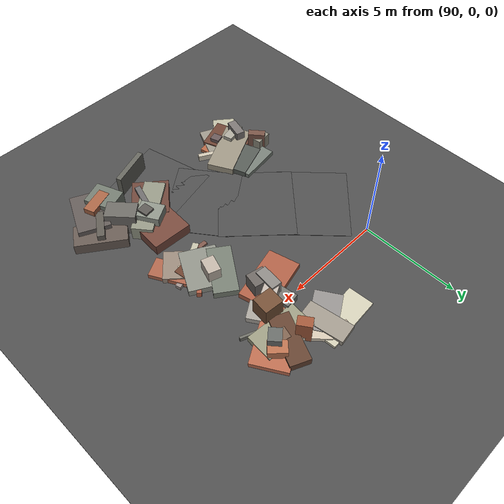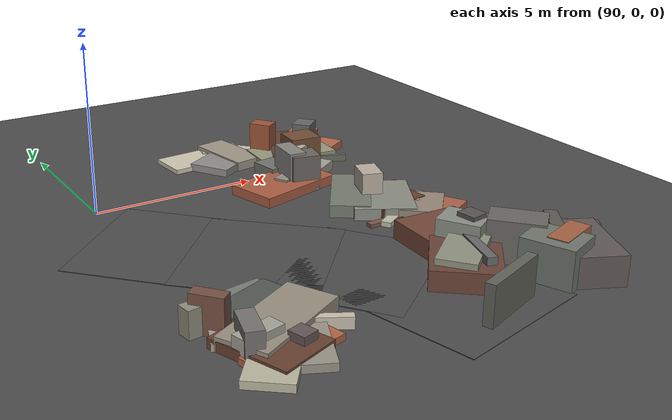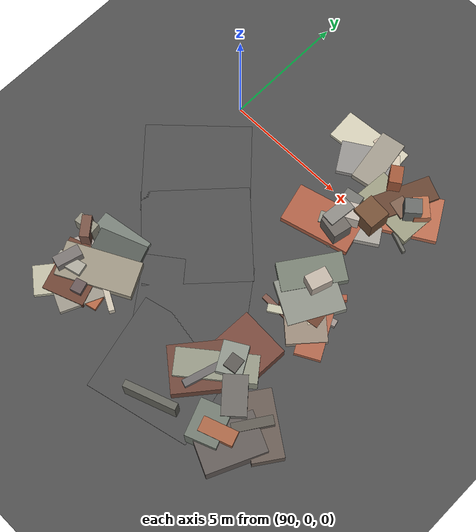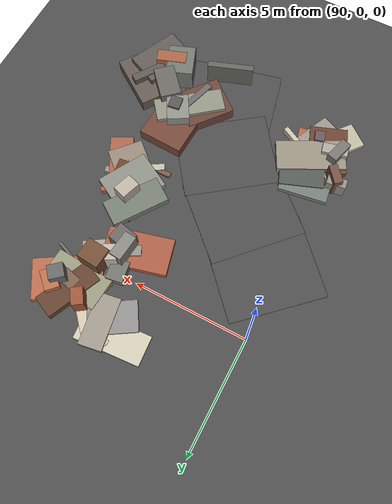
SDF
<sdf version="1.6">
 <world name="navitas_arena">
  <model name="ground_plane">
   <static>true</static>
   <link name="link">
    <collision name="collision">
     <geometry><plane><normal>0 0 1</normal><size>400 400</size></plane></geometry>
     <surface><friction><ode><mu>0.800</mu><mu2>0.800</mu2></ode></friction></surface>
    </collision>
    <visual name="visual">
     <cast_shadows>false</cast_shadows>
     <geometry><plane><normal>0 0 1</normal><size>400 400</size></plane></geometry>
     <material>
      <specular>0.04 0.04 0.04 1</specular>
      <script>
       <uri>file://media/materials/scripts/navitas_asphalt.material</uri>
       <name>Navitas/RealArenaAsphalt</name>
      </script>
     </material>
    </visual>
   </link>
  </model>
  <model name="gd_zor">
   <static>true</static>
   <pose>90.000 0.000 0.010 0 0 0.000</pose>
   <link name="link">
    <collision name="col"><geometry><box><size>50.000 50.000 0.020</size></box></geometry></collision>
    <visual name="vis">
     <geometry><box><size>50.000 50.000 0.020</size></box></geometry>
     <material>
      <specular>0.04 0.04 0.04 1</specular>
      <script>
       <uri>file://media/materials/scripts/navitas_asphalt.material</uri>
       <name>Navitas/RealArenaAsphalt</name>
      </script>
     </material>
    </visual>
   </link>
  </model>
  <model name="road_zor_2_5">
   <static>true</static>
   <pose>95.504 -9.460 0.040 0 0 1.804</pose>
   <link name="link">
    <collision name="col"><geometry><box><size>3.901 4.200 0.020</size></box></geometry></collision>
    <visual name="vis">
     <geometry><box><size>3.901 4.200 0.020</size></box></geometry>
     <material>
      <specular>0.04 0.04 0.04 1</specular>
      <script>
       <uri>file://media/materials/scripts/navitas_asphalt.material</uri>
       <name>Navitas/RealArenaAsphalt</name>
      </script>
     </material>
    </visual>
   </link>
  </model>
  <model name="road_zor_2_6">
   <static>true</static>
   <pose>94.415 -7.000 0.040 0 0 2.210</pose>
   <link name="link">
    <collision name="col"><geometry><box><size>3.391 4.200 0.020</size></box></geometry></collision>
    <visual name="vis">
     <geometry><box><size>3.391 4.200 0.020</size></box></geometry>
     <material>
      <specular>0.04 0.04 0.04 1</specular>
      <script>
       <uri>file://media/materials/scripts/navitas_asphalt.material</uri>
       <name>Navitas/RealArenaAsphalt</name>
      </script>
     </material>
    </visual>
   </link>
  </model>
  <model name="road_zor_2_7">
   <static>true</static>
   <pose>92.602 -5.000 0.040 0 0 2.390</pose>
   <link name="link">
    <collision name="col"><geometry><box><size>3.829 4.200 0.020</size></box></geometry></collision>
    <visual name="vis">
     <geometry><box><size>3.829 4.200 0.020</size></box></geometry>
     <material>
      <specular>0.04 0.04 0.04 1</specular>
      <script>
       <uri>file://media/materials/scripts/navitas_asphalt.material</uri>
       <name>Navitas/RealArenaAsphalt</name>
      </script>
     </material>
    </visual>
   </link>
  </model>
  <model name="road_zor_2_8">
   <static>true</static>
   <pose>90.593 -3.000 0.040 0 0 2.325</pose>
   <link name="link">
    <collision name="col"><geometry><box><size>3.644 4.200 0.020</size></box></geometry></collision>
    <visual name="vis">
     <geometry><box><size>3.644 4.200 0.020</size></box></geometry>
     <material>
      <specular>0.04 0.04 0.04 1</specular>
      <script>
       <uri>file://media/materials/scripts/navitas_asphalt.material</uri>
       <name>Navitas/RealArenaAsphalt</name>
      </script>
     </material>
    </visual>
   </link>
  </model>
  <model name="blk_zor_2_0_2">
   <static>true</static>
   <pose>97.161 -9.640 0.000 0 0 0</pose>
   <link name="link">
    <collision name="col_0">
     <pose>-0.304 1.284 0.414 0.000 0.000 1.272</pose>
     <geometry><box><size>2.331 0.281 0.828</size></box></geometry>
    </collision>
    <visual name="vis_0">
     <pose>-0.304 1.284 0.414 0.000 0.000 1.272</pose>
     <geometry><box><size>2.331 0.281 0.828</size></box></geometry>
     <material>
      <ambient>0.39 0.38 0.38 1</ambient>
      <diffuse>0.42 0.41 0.41 1</diffuse>
      <specular>0.05 0.05 0.045 1</specular>
     </material>
    </visual>
    <collision name="col_1">
     <pose>1.918 -0.392 0.306 0.000 0.000 0.699</pose>
     <geometry><box><size>0.371 0.389 0.612</size></box></geometry>
    </collision>
    <visual name="vis_1">
     <pose>1.918 -0.392 0.306 0.000 0.000 0.699</pose>
     <geometry><box><size>0.371 0.389 0.612</size></box></geometry>
     <material>
      <ambient>0.40 0.29 0.21 1</ambient>
      <diffuse>0.43 0.31 0.23 1</diffuse>
      <specular>0.05 0.05 0.045 1</specular>
     </material>
    </visual>
    <collision name="col_2">
     <pose>0.832 0.933 0.501 0.000 0.000 2.146</pose>
     <geometry><box><size>0.312 0.329 1.003</size></box></geometry>
    </collision>
    <visual name="vis_2">
     <pose>0.832 0.933 0.501 0.000 0.000 2.146</pose>
     <geometry><box><size>0.312 0.329 1.003</size></box></geometry>
     <material>
      <ambient>0.33 0.33 0.33 1</ambient>
      <diffuse>0.35 0.35 0.35 1</diffuse>
      <specular>0.05 0.05 0.045 1</specular>
     </material>
    </visual>
    <collision name="col_3">
     <pose>1.484 -0.208 0.587 0.000 0.000 3.481</pose>
     <geometry><box><size>1.334 0.571 1.174</size></box></geometry>
    </collision>
    <visual name="vis_3">
     <pose>1.484 -0.208 0.587 0.000 0.000 3.481</pose>
     <geometry><box><size>1.334 0.571 1.174</size></box></geometry>
     <material>
      <ambient>0.60 0.36 0.25 1</ambient>
      <diffuse>0.65 0.39 0.27 1</diffuse>
      <specular>0.05 0.05 0.045 1</specular>
     </material>
    </visual>
    <collision name="col_4">
     <pose>-1.120 -0.975 0.573 0.000 0.000 3.486</pose>
     <geometry><box><size>2.069 0.274 1.147</size></box></geometry>
    </collision>
    <visual name="vis_4">
     <pose>-1.120 -0.975 0.573 0.000 0.000 3.486</pose>
     <geometry><box><size>2.069 0.274 1.147</size></box></geometry>
     <material>
      <ambient>0.36 0.36 0.33 1</ambient>
      <diffuse>0.39 0.39 0.36 1</diffuse>
      <specular>0.05 0.05 0.045 1</specular>
     </material>
    </visual>
    <collision name="col_5">
     <pose>-0.771 0.992 0.305 0.000 0.000 0.884</pose>
     <geometry><box><size>2.109 1.826 0.611</size></box></geometry>
    </collision>
    <visual name="vis_5">
     <pose>-0.771 0.992 0.305 0.000 0.000 0.884</pose>
     <geometry><box><size>2.109 1.826 0.611</size></box></geometry>
     <material>
      <ambient>0.39 0.25 0.20 1</ambient>
      <diffuse>0.42 0.27 0.22 1</diffuse>
      <specular>0.05 0.05 0.045 1</specular>
     </material>
    </visual>
   </link>
  </model>
  <model name="blk_zor_2_0_3">
   <static>true</static>
   <pose>97.709 -8.890 0.000 0 0 0</pose>
   <link name="link">
    <collision name="col_0">
     <pose>1.437 -0.914 0.432 0.000 0.000 1.138</pose>
     <geometry><box><size>2.340 1.577 0.863</size></box></geometry>
    </collision>
    <visual name="vis_0">
     <pose>1.437 -0.914 0.432 0.000 0.000 1.138</pose>
     <geometry><box><size>2.340 1.577 0.863</size></box></geometry>
     <material>
      <ambient>0.36 0.32 0.32 1</ambient>
      <diffuse>0.38 0.35 0.34 1</diffuse>
      <specular>0.05 0.05 0.045 1</specular>
     </material>
    </visual>
    <collision name="col_1">
     <pose>-0.383 1.145 0.605 0.000 0.000 1.711</pose>
     <geometry><box><size>0.568 0.520 1.209</size></box></geometry>
    </collision>
    <visual name="vis_1">
     <pose>-0.383 1.145 0.605 0.000 0.000 1.711</pose>
     <geometry><box><size>0.568 0.520 1.209</size></box></geometry>
     <material>
      <ambient>0.32 0.31 0.30 1</ambient>
      <diffuse>0.35 0.34 0.32 1</diffuse>
      <specular>0.05 0.05 0.045 1</specular>
     </material>
    </visual>
    <collision name="col_2">
     <pose>-0.553 1.937 0.297 0.000 0.000 3.096</pose>
     <geometry><box><size>1.998 1.924 0.594</size></box></geometry>
    </collision>
    <visual name="vis_2">
     <pose>-0.553 1.937 0.297 0.000 0.000 3.096</pose>
     <geometry><box><size>1.998 1.924 0.594</size></box></geometry>
     <material>
      <ambient>0.43 0.26 0.21 1</ambient>
      <diffuse>0.46 0.28 0.23 1</diffuse>
      <specular>0.05 0.05 0.045 1</specular>
     </material>
    </visual>
    <collision name="col_3">
     <pose>0.494 -0.988 0.575 0.000 0.000 1.942</pose>
     <geometry><box><size>1.461 1.213 1.151</size></box></geometry>
    </collision>
    <visual name="vis_3">
     <pose>0.494 -0.988 0.575 0.000 0.000 1.942</pose>
     <geometry><box><size>1.461 1.213 1.151</size></box></geometry>
     <material>
      <ambient>0.41 0.43 0.40 1</ambient>
      <diffuse>0.44 0.47 0.43 1</diffuse>
      <specular>0.05 0.05 0.045 1</specular>
     </material>
    </visual>
    <collision name="col_4">
     <pose>-0.547 1.253 0.546 0.000 0.000 2.096</pose>
     <geometry><box><size>1.202 0.968 1.091</size></box></geometry>
    </collision>
    <visual name="vis_4">
     <pose>-0.547 1.253 0.546 0.000 0.000 2.096</pose>
     <geometry><box><size>1.202 0.968 1.091</size></box></geometry>
     <material>
      <ambient>0.51 0.53 0.50 1</ambient>
      <diffuse>0.55 0.57 0.53 1</diffuse>
      <specular>0.05 0.05 0.045 1</specular>
     </material>
    </visual>
    <collision name="col_5">
     <pose>1.792 0.338 0.300 0.000 0.000 2.531</pose>
     <geometry><box><size>2.540 1.203 0.600</size></box></geometry>
    </collision>
    <visual name="vis_5">
     <pose>1.792 0.338 0.300 0.000 0.000 2.531</pose>
     <geometry><box><size>2.540 1.203 0.600</size></box></geometry>
     <material>
      <ambient>0.37 0.33 0.30 1</ambient>
      <diffuse>0.40 0.35 0.32 1</diffuse>
      <specular>0.05 0.05 0.045 1</specular>
     </material>
    </visual>
    <collision name="col_6">
     <pose>1.575 0.101 0.453 0.000 0.000 0.979</pose>
     <geometry><box><size>1.531 0.364 0.906</size></box></geometry>
    </collision>
    <visual name="vis_6">
     <pose>1.575 0.101 0.453 0.000 0.000 0.979</pose>
     <geometry><box><size>1.531 0.364 0.906</size></box></geometry>
     <material>
      <ambient>0.34 0.32 0.30 1</ambient>
      <diffuse>0.37 0.35 0.32 1</diffuse>
      <specular>0.05 0.05 0.045 1</specular>
     </material>
    </visual>
    <collision name="col_7">
     <pose>-0.845 0.721 0.391 0.000 0.000 0.671</pose>
     <geometry><box><size>3.068 1.065 0.781</size></box></geometry>
    </collision>
    <visual name="vis_7">
     <pose>-0.845 0.721 0.391 0.000 0.000 0.671</pose>
     <geometry><box><size>3.068 1.065 0.781</size></box></geometry>
     <material>
      <ambient>0.53 0.53 0.48 1</ambient>
      <diffuse>0.57 0.58 0.51 1</diffuse>
      <specular>0.05 0.05 0.045 1</specular>
     </material>
    </visual>
    <collision name="col_8">
     <pose>0.463 0.338 0.605 0.000 0.000 2.302</pose>
     <geometry><box><size>1.505 0.923 1.211</size></box></geometry>
    </collision>
    <visual name="vis_8">
     <pose>0.463 0.338 0.605 0.000 0.000 2.302</pose>
     <geometry><box><size>1.505 0.923 1.211</size></box></geometry>
     <material>
      <ambient>0.39 0.38 0.37 1</ambient>
      <diffuse>0.42 0.41 0.39 1</diffuse>
      <specular>0.05 0.05 0.045 1</specular>
     </material>
    </visual>
   </link>
  </model>
  <model name="deb_zor_25">
   <static>true</static>
   <pose>95.999 -1.327 0.000 0 0 0</pose>
   <link name="link">
    <collision name="col_0">
     <pose>-0.168 0.292 0.189 0.000 0.000 0.486</pose>
     <geometry><box><size>0.895 0.463 0.377</size></box></geometry>
    </collision>
    <visual name="vis_0">
     <pose>-0.168 0.292 0.189 0.000 0.000 0.486</pose>
     <geometry><box><size>0.895 0.463 0.377</size></box></geometry>
     <material>
      <ambient>0.53 0.52 0.48 1</ambient>
      <diffuse>0.57 0.57 0.52 1</diffuse>
      <specular>0.05 0.05 0.045 1</specular>
     </material>
    </visual>
    <collision name="col_1">
     <pose>0.007 0.451 0.583 0.000 0.000 1.471</pose>
     <geometry><box><size>1.114 0.533 1.166</size></box></geometry>
    </collision>
    <visual name="vis_1">
     <pose>0.007 0.451 0.583 0.000 0.000 1.471</pose>
     <geometry><box><size>1.114 0.533 1.166</size></box></geometry>
     <material>
      <ambient>0.50 0.49 0.48 1</ambient>
      <diffuse>0.54 0.53 0.51 1</diffuse>
      <specular>0.05 0.05 0.045 1</specular>
     </material>
    </visual>
    <collision name="col_2">
     <pose>-0.408 0.136 0.160 0.000 0.000 0.253</pose>
     <geometry><box><size>2.817 1.595 0.321</size></box></geometry>
    </collision>
    <visual name="vis_2">
     <pose>-0.408 0.136 0.160 0.000 0.000 0.253</pose>
     <geometry><box><size>2.817 1.595 0.321</size></box></geometry>
     <material>
      <ambient>0.62 0.34 0.25 1</ambient>
      <diffuse>0.67 0.37 0.27 1</diffuse>
      <specular>0.05 0.05 0.045 1</specular>
     </material>
    </visual>
    <collision name="col_3">
     <pose>0.407 -0.333 0.064 0.000 0.000 0.667</pose>
     <geometry><box><size>0.220 0.307 0.128</size></box></geometry>
    </collision>
    <visual name="vis_3">
     <pose>0.407 -0.333 0.064 0.000 0.000 0.667</pose>
     <geometry><box><size>0.220 0.307 0.128</size></box></geometry>
     <material>
      <ambient>0.55 0.55 0.51 1</ambient>
      <diffuse>0.60 0.60 0.55 1</diffuse>
      <specular>0.05 0.05 0.045 1</specular>
     </material>
    </visual>
    <collision name="col_4">
     <pose>0.239 0.080 0.542 0.000 0.000 1.359</pose>
     <geometry><box><size>0.764 0.874 1.084</size></box></geometry>
    </collision>
    <visual name="vis_4">
     <pose>0.239 0.080 0.542 0.000 0.000 1.359</pose>
     <geometry><box><size>0.764 0.874 1.084</size></box></geometry>
     <material>
      <ambient>0.39 0.37 0.35 1</ambient>
      <diffuse>0.42 0.40 0.38 1</diffuse>
      <specular>0.05 0.05 0.045 1</specular>
     </material>
    </visual>
   </link>
  </model>
  <model name="deb_zor_36">
   <static>true</static>
   <pose>90.998 -8.646 0.000 0 0 0</pose>
   <link name="link">
    <collision name="col_0">
     <pose>-0.395 -0.683 0.112 0.000 0.000 0.892</pose>
     <geometry><box><size>3.195 1.173 0.225</size></box></geometry>
    </collision>
    <visual name="vis_0">
     <pose>-0.395 -0.683 0.112 0.000 0.000 0.892</pose>
     <geometry><box><size>3.195 1.173 0.225</size></box></geometry>
     <material>
      <ambient>0.68 0.67 0.58 1</ambient>
      <diffuse>0.73 0.72 0.63 1</diffuse>
      <specular>0.05 0.05 0.045 1</specular>
     </material>
    </visual>
    <collision name="col_1">
     <pose>-0.515 -0.545 0.145 0.000 0.000 1.921</pose>
     <geometry><box><size>2.225 1.680 0.290</size></box></geometry>
    </collision>
    <visual name="vis_1">
     <pose>-0.515 -0.545 0.145 0.000 0.000 1.921</pose>
     <geometry><box><size>2.225 1.680 0.290</size></box></geometry>
     <material>
      <ambient>0.39 0.24 0.18 1</ambient>
      <diffuse>0.42 0.26 0.20 1</diffuse>
      <specular>0.05 0.05 0.045 1</specular>
     </material>
    </visual>
    <collision name="col_2">
     <pose>0.997 -0.371 0.169 0.000 0.000 2.645</pose>
     <geometry><box><size>1.325 0.224 0.337</size></box></geometry>
    </collision>
    <visual name="vis_2">
     <pose>0.997 -0.371 0.169 0.000 0.000 2.645</pose>
     <geometry><box><size>1.325 0.224 0.337</size></box></geometry>
     <material>
      <ambient>0.73 0.70 0.63 1</ambient>
      <diffuse>0.79 0.75 0.68 1</diffuse>
      <specular>0.05 0.05 0.045 1</specular>
     </material>
    </visual>
    <collision name="col_3">
     <pose>0.094 -0.939 0.117 0.000 0.000 1.145</pose>
     <geometry><box><size>1.927 1.209 0.234</size></box></geometry>
    </collision>
    <visual name="vis_3">
     <pose>0.094 -0.939 0.117 0.000 0.000 1.145</pose>
     <geometry><box><size>1.927 1.209 0.234</size></box></geometry>
     <material>
      <ambient>0.55 0.53 0.49 1</ambient>
      <diffuse>0.60 0.58 0.53 1</diffuse>
      <specular>0.05 0.05 0.045 1</specular>
     </material>
    </visual>
   </link>
  </model>
  <model name="deb_zor_99">
   <static>true</static>
   <pose>90.802 -9.082 0.000 0 0 0</pose>
   <link name="link">
    <collision name="col_0">
     <pose>-0.621 -0.096 0.303 0.000 0.000 0.234</pose>
     <geometry><box><size>1.123 0.484 0.605</size></box></geometry>
    </collision>
    <visual name="vis_0">
     <pose>-0.621 -0.096 0.303 0.000 0.000 0.234</pose>
     <geometry><box><size>1.123 0.484 0.605</size></box></geometry>
     <material>
      <ambient>0.61 0.61 0.55 1</ambient>
      <diffuse>0.66 0.65 0.60 1</diffuse>
      <specular>0.05 0.05 0.045 1</specular>
     </material>
    </visual>
    <collision name="col_1">
     <pose>0.017 -0.461 0.098 0.000 0.000 0.234</pose>
     <geometry><box><size>2.356 0.921 0.195</size></box></geometry>
    </collision>
    <visual name="vis_1">
     <pose>0.017 -0.461 0.098 0.000 0.000 0.234</pose>
     <geometry><box><size>2.356 0.921 0.195</size></box></geometry>
     <material>
      <ambient>0.64 0.37 0.25 1</ambient>
      <diffuse>0.69 0.40 0.27 1</diffuse>
      <specular>0.05 0.05 0.045 1</specular>
     </material>
    </visual>
    <collision name="col_2">
     <pose>-0.792 -0.023 0.420 0.000 0.000 1.297</pose>
     <geometry><box><size>1.040 0.454 0.841</size></box></geometry>
    </collision>
    <visual name="vis_2">
     <pose>-0.792 -0.023 0.420 0.000 0.000 1.297</pose>
     <geometry><box><size>1.040 0.454 0.841</size></box></geometry>
     <material>
      <ambient>0.44 0.41 0.41 1</ambient>
      <diffuse>0.47 0.45 0.44 1</diffuse>
      <specular>0.05 0.05 0.045 1</specular>
     </material>
    </visual>
    <collision name="col_3">
     <pose>0.254 -0.486 0.253 0.000 0.000 1.869</pose>
     <geometry><box><size>0.496 0.445 0.506</size></box></geometry>
    </collision>
    <visual name="vis_3">
     <pose>0.254 -0.486 0.253 0.000 0.000 1.869</pose>
     <geometry><box><size>0.496 0.445 0.506</size></box></geometry>
     <material>
      <ambient>0.37 0.32 0.31 1</ambient>
      <diffuse>0.40 0.34 0.34 1</diffuse>
      <specular>0.05 0.05 0.045 1</specular>
     </material>
    </visual>
   </link>
  </model>
  <model name="deb_zor_264">
   <static>true</static>
   <pose>95.216 1.736 0.000 0 0 0</pose>
   <link name="link">
    <collision name="col_0">
     <pose>-0.507 0.650 0.082 0.000 0.000 0.074</pose>
     <geometry><box><size>2.867 1.275 0.164</size></box></geometry>
    </collision>
    <visual name="vis_0">
     <pose>-0.507 0.650 0.082 0.000 0.000 0.074</pose>
     <geometry><box><size>2.867 1.275 0.164</size></box></geometry>
     <material>
      <ambient>0.75 0.73 0.65 1</ambient>
      <diffuse>0.81 0.79 0.70 1</diffuse>
      <specular>0.05 0.05 0.045 1</specular>
     </material>
    </visual>
    <collision name="col_1">
     <pose>0.234 0.343 0.150 0.000 0.000 1.734</pose>
     <geometry><box><size>2.215 1.002 0.301</size></box></geometry>
    </collision>
    <visual name="vis_1">
     <pose>0.234 0.343 0.150 0.000 0.000 1.734</pose>
     <geometry><box><size>2.215 1.002 0.301</size></box></geometry>
     <material>
      <ambient>0.58 0.54 0.50 1</ambient>
      <diffuse>0.62 0.59 0.54 1</diffuse>
      <specular>0.05 0.05 0.045 1</specular>
     </material>
    </visual>
    <collision name="col_2">
     <pose>-0.367 0.947 0.096 0.000 0.000 -0.218</pose>
     <geometry><box><size>0.210 0.247 0.191</size></box></geometry>
    </collision>
    <visual name="vis_2">
     <pose>-0.367 0.947 0.096 0.000 0.000 -0.218</pose>
     <geometry><box><size>0.210 0.247 0.191</size></box></geometry>
     <material>
      <ambient>0.75 0.68 0.61 1</ambient>
      <diffuse>0.81 0.74 0.66 1</diffuse>
      <specular>0.05 0.05 0.045 1</specular>
     </material>
    </visual>
    <collision name="col_3">
     <pose>0.859 -0.003 0.113 0.000 0.000 2.307</pose>
     <geometry><box><size>1.881 1.227 0.226</size></box></geometry>
    </collision>
    <visual name="vis_3">
     <pose>0.859 -0.003 0.113 0.000 0.000 2.307</pose>
     <geometry><box><size>1.881 1.227 0.226</size></box></geometry>
     <material>
      <ambient>0.76 0.72 0.64 1</ambient>
      <diffuse>0.82 0.77 0.69 1</diffuse>
      <specular>0.05 0.05 0.045 1</specular>
     </material>
    </visual>
    <collision name="col_4">
     <pose>-0.127 -0.019 0.127 0.000 0.000 0.553</pose>
     <geometry><box><size>2.057 1.323 0.254</size></box></geometry>
    </collision>
    <visual name="vis_4">
     <pose>-0.127 -0.019 0.127 0.000 0.000 0.553</pose>
     <geometry><box><size>2.057 1.323 0.254</size></box></geometry>
     <material>
      <ambient>0.53 0.52 0.51 1</ambient>
      <diffuse>0.57 0.56 0.55 1</diffuse>
      <specular>0.05 0.05 0.045 1</specular>
     </material>
    </visual>
   </link>
  </model>
  <model name="deb_zor_266">
   <static>true</static>
   <pose>97.102 1.480 0.000 0 0 0</pose>
   <link name="link">
    <collision name="col_0">
     <pose>0.548 0.358 0.100 0.000 0.000 3.721</pose>
     <geometry><box><size>1.832 0.306 0.199</size></box></geometry>
    </collision>
    <visual name="vis_0">
     <pose>0.548 0.358 0.100 0.000 0.000 3.721</pose>
     <geometry><box><size>1.832 0.306 0.199</size></box></geometry>
     <material>
      <ambient>0.51 0.51 0.47 1</ambient>
      <diffuse>0.55 0.55 0.51 1</diffuse>
      <specular>0.05 0.05 0.045 1</specular>
     </material>
    </visual>
    <collision name="col_1">
     <pose>0.737 -0.213 0.564 0.000 0.000 3.850</pose>
     <geometry><box><size>0.659 0.612 1.127</size></box></geometry>
    </collision>
    <visual name="vis_1">
     <pose>0.737 -0.213 0.564 0.000 0.000 3.850</pose>
     <geometry><box><size>0.659 0.612 1.127</size></box></geometry>
     <material>
      <ambient>0.37 0.38 0.37 1</ambient>
      <diffuse>0.40 0.41 0.40 1</diffuse>
      <specular>0.05 0.05 0.045 1</specular>
     </material>
    </visual>
    <collision name="col_2">
     <pose>0.088 -0.443 0.167 0.000 0.000 3.066</pose>
     <geometry><box><size>2.592 1.409 0.335</size></box></geometry>
    </collision>
    <visual name="vis_2">
     <pose>0.088 -0.443 0.167 0.000 0.000 3.066</pose>
     <geometry><box><size>2.592 1.409 0.335</size></box></geometry>
     <material>
      <ambient>0.56 0.55 0.46 1</ambient>
      <diffuse>0.60 0.60 0.50 1</diffuse>
      <specular>0.05 0.05 0.045 1</specular>
     </material>
    </visual>
    <collision name="col_3">
     <pose>0.537 -0.315 0.142 0.000 0.000 3.677</pose>
     <geometry><box><size>2.738 1.770 0.285</size></box></geometry>
    </collision>
    <visual name="vis_3">
     <pose>0.537 -0.315 0.142 0.000 0.000 3.677</pose>
     <geometry><box><size>2.738 1.770 0.285</size></box></geometry>
     <material>
      <ambient>0.66 0.39 0.28 1</ambient>
      <diffuse>0.72 0.42 0.31 1</diffuse>
      <specular>0.05 0.05 0.045 1</specular>
     </material>
    </visual>
    <collision name="col_4">
     <pose>-0.567 0.274 0.594 0.000 0.000 3.740</pose>
     <geometry><box><size>0.495 0.714 1.188</size></box></geometry>
    </collision>
    <visual name="vis_4">
     <pose>-0.567 0.274 0.594 0.000 0.000 3.740</pose>
     <geometry><box><size>0.495 0.714 1.188</size></box></geometry>
     <material>
      <ambient>0.58 0.31 0.20 1</ambient>
      <diffuse>0.62 0.34 0.22 1</diffuse>
      <specular>0.05 0.05 0.045 1</specular>
     </material>
    </visual>
   </link>
  </model>
  <model name="deb_zor_315">
   <static>true</static>
   <pose>97.207 1.346 0.000 0 0 0</pose>
   <link name="link">
    <collision name="col_0">
     <pose>0.809 0.241 0.367 0.000 0.000 -0.760</pose>
     <geometry><box><size>0.883 0.620 0.735</size></box></geometry>
    </collision>
    <visual name="vis_0">
     <pose>0.809 0.241 0.367 0.000 0.000 -0.760</pose>
     <geometry><box><size>0.883 0.620 0.735</size></box></geometry>
     <material>
      <ambient>0.67 0.41 0.28 1</ambient>
      <diffuse>0.72 0.44 0.31 1</diffuse>
      <specular>0.05 0.05 0.045 1</specular>
     </material>
    </visual>
    <collision name="col_1">
     <pose>0.300 -0.985 0.078 0.000 0.000 0.924</pose>
     <geometry><box><size>0.366 0.310 0.157</size></box></geometry>
    </collision>
    <visual name="vis_1">
     <pose>0.300 -0.985 0.078 0.000 0.000 0.924</pose>
     <geometry><box><size>0.366 0.310 0.157</size></box></geometry>
     <material>
      <ambient>0.60 0.39 0.25 1</ambient>
      <diffuse>0.65 0.42 0.27 1</diffuse>
      <specular>0.05 0.05 0.045 1</specular>
     </material>
    </visual>
    <collision name="col_2">
     <pose>0.039 0.210 0.209 0.000 0.000 1.149</pose>
     <geometry><box><size>2.472 0.999 0.419</size></box></geometry>
    </collision>
    <visual name="vis_2">
     <pose>0.039 0.210 0.209 0.000 0.000 1.149</pose>
     <geometry><box><size>2.472 0.999 0.419</size></box></geometry>
     <material>
      <ambient>0.36 0.24 0.17 1</ambient>
      <diffuse>0.39 0.26 0.19 1</diffuse>
      <specular>0.05 0.05 0.045 1</specular>
     </material>
    </visual>
    <collision name="col_3">
     <pose>0.513 0.790 0.115 0.000 0.000 1.058</pose>
     <geometry><box><size>0.474 0.410 0.230</size></box></geometry>
    </collision>
    <visual name="vis_3">
     <pose>0.513 0.790 0.115 0.000 0.000 1.058</pose>
     <geometry><box><size>0.474 0.410 0.230</size></box></geometry>
     <material>
      <ambient>0.61 0.58 0.53 1</ambient>
      <diffuse>0.66 0.62 0.58 1</diffuse>
      <specular>0.05 0.05 0.045 1</specular>
     </material>
    </visual>
    <collision name="col_4">
     <pose>0.578 -1.022 0.120 0.000 0.000 -0.379</pose>
     <geometry><box><size>1.870 0.123 0.239</size></box></geometry>
    </collision>
    <visual name="vis_4">
     <pose>0.578 -1.022 0.120 0.000 0.000 -0.379</pose>
     <geometry><box><size>1.870 0.123 0.239</size></box></geometry>
     <material>
      <ambient>0.39 0.38 0.37 1</ambient>
      <diffuse>0.42 0.42 0.39 1</diffuse>
      <specular>0.05 0.05 0.045 1</specular>
     </material>
    </visual>
   </link>
  </model>
  <model name="deb_zor_332">
   <static>true</static>
   <pose>97.631 -3.741 0.000 0 0 0</pose>
   <link name="link">
    <collision name="col_0">
     <pose>-0.279 -0.050 0.182 0.000 0.000 1.066</pose>
     <geometry><box><size>2.269 1.792 0.364</size></box></geometry>
    </collision>
    <visual name="vis_0">
     <pose>-0.279 -0.050 0.182 0.000 0.000 1.066</pose>
     <geometry><box><size>2.269 1.792 0.364</size></box></geometry>
     <material>
      <ambient>0.51 0.52 0.48 1</ambient>
      <diffuse>0.55 0.56 0.52 1</diffuse>
      <specular>0.05 0.05 0.045 1</specular>
     </material>
    </visual>
    <collision name="col_1">
     <pose>-0.397 -0.271 0.131 0.000 0.000 1.371</pose>
     <geometry><box><size>1.540 0.278 0.262</size></box></geometry>
    </collision>
    <visual name="vis_1">
     <pose>-0.397 -0.271 0.131 0.000 0.000 1.371</pose>
     <geometry><box><size>1.540 0.278 0.262</size></box></geometry>
     <material>
      <ambient>0.48 0.31 0.25 1</ambient>
      <diffuse>0.52 0.34 0.27 1</diffuse>
      <specular>0.05 0.05 0.045 1</specular>
     </material>
    </visual>
    <collision name="col_2">
     <pose>0.067 -0.403 0.108 0.000 0.000 0.241</pose>
     <geometry><box><size>2.204 0.275 0.215</size></box></geometry>
    </collision>
    <visual name="vis_2">
     <pose>0.067 -0.403 0.108 0.000 0.000 0.241</pose>
     <geometry><box><size>2.204 0.275 0.215</size></box></geometry>
     <material>
      <ambient>0.56 0.52 0.50 1</ambient>
      <diffuse>0.61 0.56 0.54 1</diffuse>
      <specular>0.05 0.05 0.045 1</specular>
     </material>
    </visual>
    <collision name="col_3">
     <pose>0.355 0.456 0.162 0.000 0.000 0.799</pose>
     <geometry><box><size>1.133 0.224 0.323</size></box></geometry>
    </collision>
    <visual name="vis_3">
     <pose>0.355 0.456 0.162 0.000 0.000 0.799</pose>
     <geometry><box><size>1.133 0.224 0.323</size></box></geometry>
     <material>
      <ambient>0.63 0.34 0.25 1</ambient>
      <diffuse>0.68 0.37 0.27 1</diffuse>
      <specular>0.05 0.05 0.045 1</specular>
     </material>
    </visual>
    <collision name="col_4">
     <pose>0.618 -0.626 0.131 0.000 0.000 -1.079</pose>
     <geometry><box><size>2.682 1.021 0.261</size></box></geometry>
    </collision>
    <visual name="vis_4">
     <pose>0.618 -0.626 0.131 0.000 0.000 -1.079</pose>
     <geometry><box><size>2.682 1.021 0.261</size></box></geometry>
     <material>
      <ambient>0.62 0.36 0.27 1</ambient>
      <diffuse>0.67 0.39 0.29 1</diffuse>
      <specular>0.05 0.05 0.045 1</specular>
     </material>
    </visual>
   </link>
  </model>
  <model name="deb_zor_345">
   <static>true</static>
   <pose>96.995 0.241 0.000 0 0 0</pose>
   <link name="link">
    <collision name="col_0">
     <pose>-0.692 0.362 0.141 0.000 0.000 2.055</pose>
     <geometry><box><size>1.064 0.181 0.282</size></box></geometry>
    </collision>
    <visual name="vis_0">
     <pose>-0.692 0.362 0.141 0.000 0.000 2.055</pose>
     <geometry><box><size>1.064 0.181 0.282</size></box></geometry>
     <material>
      <ambient>0.67 0.40 0.28 1</ambient>
      <diffuse>0.72 0.43 0.31 1</diffuse>
      <specular>0.05 0.05 0.045 1</specular>
     </material>
    </visual>
    <collision name="col_1">
     <pose>-0.621 -0.675 0.522 0.000 0.000 2.044</pose>
     <geometry><box><size>0.671 0.580 1.044</size></box></geometry>
    </collision>
    <visual name="vis_1">
     <pose>-0.621 -0.675 0.522 0.000 0.000 2.044</pose>
     <geometry><box><size>0.671 0.580 1.044</size></box></geometry>
     <material>
      <ambient>0.70 0.65 0.62 1</ambient>
      <diffuse>0.75 0.71 0.67 1</diffuse>
      <specular>0.05 0.05 0.045 1</specular>
     </material>
    </visual>
    <collision name="col_2">
     <pose>-0.933 0.207 0.098 0.000 0.000 2.299</pose>
     <geometry><box><size>0.510 0.245 0.196</size></box></geometry>
    </collision>
    <visual name="vis_2">
     <pose>-0.933 0.207 0.098 0.000 0.000 2.299</pose>
     <geometry><box><size>0.510 0.245 0.196</size></box></geometry>
     <material>
      <ambient>0.66 0.40 0.30 1</ambient>
      <diffuse>0.71 0.44 0.33 1</diffuse>
      <specular>0.05 0.05 0.045 1</specular>
     </material>
    </visual>
    <collision name="col_3">
     <pose>-0.431 -1.133 0.157 0.000 0.000 0.567</pose>
     <geometry><box><size>2.548 0.696 0.314</size></box></geometry>
    </collision>
    <visual name="vis_3">
     <pose>-0.431 -1.133 0.157 0.000 0.000 0.567</pose>
     <geometry><box><size>2.548 0.696 0.314</size></box></geometry>
     <material>
      <ambient>0.60 0.59 0.55 1</ambient>
      <diffuse>0.65 0.63 0.60 1</diffuse>
      <specular>0.05 0.05 0.045 1</specular>
     </material>
    </visual>
    <collision name="col_4">
     <pose>-1.136 -0.286 0.224 0.000 0.000 1.730</pose>
     <geometry><box><size>0.920 0.739 0.447</size></box></geometry>
    </collision>
    <visual name="vis_4">
     <pose>-1.136 -0.286 0.224 0.000 0.000 1.730</pose>
     <geometry><box><size>0.920 0.739 0.447</size></box></geometry>
     <material>
      <ambient>0.41 0.42 0.40 1</ambient>
      <diffuse>0.45 0.45 0.43 1</diffuse>
      <specular>0.05 0.05 0.045 1</specular>
     </material>
    </visual>
    <collision name="col_5">
     <pose>-0.104 -0.291 0.607 0.000 0.000 1.480</pose>
     <geometry><box><size>0.881 0.976 1.215</size></box></geometry>
    </collision>
    <visual name="vis_5">
     <pose>-0.104 -0.291 0.607 0.000 0.000 1.480</pose>
     <geometry><box><size>0.881 0.976 1.215</size></box></geometry>
     <material>
      <ambient>0.42 0.29 0.20 1</ambient>
      <diffuse>0.45 0.31 0.21 1</diffuse>
      <specular>0.05 0.05 0.045 1</specular>
     </material>
    </visual>
    <collision name="col_6">
     <pose>0.426 0.946 0.217 0.000 0.000 1.309</pose>
     <geometry><box><size>0.586 0.748 0.434</size></box></geometry>
    </collision>
    <visual name="vis_6">
     <pose>0.426 0.946 0.217 0.000 0.000 1.309</pose>
     <geometry><box><size>0.586 0.748 0.434</size></box></geometry>
     <material>
      <ambient>0.45 0.36 0.29 1</ambient>
      <diffuse>0.49 0.38 0.31 1</diffuse>
      <specular>0.05 0.05 0.045 1</specular>
     </material>
    </visual>
   </link>
  </model>
  <model name="deb_zor_357">
   <static>true</static>
   <pose>96.730 -2.905 0.000 0 0 0</pose>
   <link name="link">
    <collision name="col_0">
     <pose>0.520 -0.372 0.504 0.000 0.000 1.247</pose>
     <geometry><box><size>0.860 0.617 1.009</size></box></geometry>
    </collision>
    <visual name="vis_0">
     <pose>0.520 -0.372 0.504 0.000 0.000 1.247</pose>
     <geometry><box><size>0.860 0.617 1.009</size></box></geometry>
     <material>
      <ambient>0.69 0.64 0.59 1</ambient>
      <diffuse>0.74 0.69 0.64 1</diffuse>
      <specular>0.05 0.05 0.045 1</specular>
     </material>
    </visual>
    <collision name="col_1">
     <pose>0.046 -0.325 0.084 0.000 0.000 1.038</pose>
     <geometry><box><size>0.365 0.474 0.169</size></box></geometry>
    </collision>
    <visual name="vis_1">
     <pose>0.046 -0.325 0.084 0.000 0.000 1.038</pose>
     <geometry><box><size>0.365 0.474 0.169</size></box></geometry>
     <material>
      <ambient>0.47 0.47 0.46 1</ambient>
      <diffuse>0.50 0.51 0.49 1</diffuse>
      <specular>0.05 0.05 0.045 1</specular>
     </material>
    </visual>
    <collision name="col_2">
     <pose>0.036 -0.167 0.193 0.000 0.000 0.962</pose>
     <geometry><box><size>2.551 1.174 0.387</size></box></geometry>
    </collision>
    <visual name="vis_2">
     <pose>0.036 -0.167 0.193 0.000 0.000 0.962</pose>
     <geometry><box><size>2.551 1.174 0.387</size></box></geometry>
     <material>
      <ambient>0.42 0.45 0.40 1</ambient>
      <diffuse>0.46 0.49 0.44 1</diffuse>
      <specular>0.05 0.05 0.045 1</specular>
     </material>
    </visual>
    <collision name="col_3">
     <pose>0.242 -0.725 0.171 0.000 0.000 -0.551</pose>
     <geometry><box><size>1.562 1.387 0.342</size></box></geometry>
    </collision>
    <visual name="vis_3">
     <pose>0.242 -0.725 0.171 0.000 0.000 -0.551</pose>
     <geometry><box><size>1.562 1.387 0.342</size></box></geometry>
     <material>
      <ambient>0.37 0.38 0.37 1</ambient>
      <diffuse>0.40 0.41 0.40 1</diffuse>
      <specular>0.05 0.05 0.045 1</specular>
     </material>
    </visual>
    <collision name="col_4">
     <pose>0.057 0.573 0.082 0.000 0.000 -1.080</pose>
     <geometry><box><size>0.350 0.207 0.164</size></box></geometry>
    </collision>
    <visual name="vis_4">
     <pose>0.057 0.573 0.082 0.000 0.000 -1.080</pose>
     <geometry><box><size>0.350 0.207 0.164</size></box></geometry>
     <material>
      <ambient>0.34 0.33 0.28 1</ambient>
      <diffuse>0.37 0.36 0.30 1</diffuse>
      <specular>0.05 0.05 0.045 1</specular>
     </material>
    </visual>
    <collision name="col_5">
     <pose>-0.013 0.324 0.075 0.000 0.000 0.940</pose>
     <geometry><box><size>0.360 0.227 0.149</size></box></geometry>
    </collision>
    <visual name="vis_5">
     <pose>-0.013 0.324 0.075 0.000 0.000 0.940</pose>
     <geometry><box><size>0.360 0.227 0.149</size></box></geometry>
     <material>
      <ambient>0.35 0.36 0.34 1</ambient>
      <diffuse>0.37 0.39 0.37 1</diffuse>
      <specular>0.05 0.05 0.045 1</specular>
     </material>
    </visual>
   </link>
  </model>
  <model name="deb_zor_365">
   <static>true</static>
   <pose>90.593 -7.920 0.000 0 0 0</pose>
   <link name="link">
    <collision name="col_0">
     <pose>0.451 -0.643 0.198 0.000 0.000 3.617</pose>
     <geometry><box><size>3.026 1.399 0.397</size></box></geometry>
    </collision>
    <visual name="vis_0">
     <pose>0.451 -0.643 0.198 0.000 0.000 3.617</pose>
     <geometry><box><size>3.026 1.399 0.397</size></box></geometry>
     <material>
      <ambient>0.56 0.53 0.47 1</ambient>
      <diffuse>0.60 0.57 0.50 1</diffuse>
      <specular>0.05 0.05 0.045 1</specular>
     </material>
    </visual>
    <collision name="col_1">
     <pose>0.432 0.329 0.165 0.000 0.000 3.500</pose>
     <geometry><box><size>1.947 1.220 0.331</size></box></geometry>
    </collision>
    <visual name="vis_1">
     <pose>0.432 0.329 0.165 0.000 0.000 3.500</pose>
     <geometry><box><size>1.947 1.220 0.331</size></box></geometry>
     <material>
      <ambient>0.30 0.32 0.31 1</ambient>
      <diffuse>0.33 0.35 0.33 1</diffuse>
      <specular>0.05 0.05 0.045 1</specular>
     </material>
    </visual>
    <collision name="col_2">
     <pose>-0.910 0.056 0.517 0.000 0.000 2.257</pose>
     <geometry><box><size>0.879 0.374 1.034</size></box></geometry>
    </collision>
    <visual name="vis_2">
     <pose>-0.910 0.056 0.517 0.000 0.000 2.257</pose>
     <geometry><box><size>0.879 0.374 1.034</size></box></geometry>
     <material>
      <ambient>0.42 0.30 0.25 1</ambient>
      <diffuse>0.46 0.32 0.27 1</diffuse>
      <specular>0.05 0.05 0.045 1</specular>
     </material>
    </visual>
    <collision name="col_3">
     <pose>0.070 0.883 0.137 0.000 0.000 3.292</pose>
     <geometry><box><size>2.146 0.794 0.275</size></box></geometry>
    </collision>
    <visual name="vis_3">
     <pose>0.070 0.883 0.137 0.000 0.000 3.292</pose>
     <geometry><box><size>2.146 0.794 0.275</size></box></geometry>
     <material>
      <ambient>0.43 0.45 0.42 1</ambient>
      <diffuse>0.46 0.49 0.46 1</diffuse>
      <specular>0.05 0.05 0.045 1</specular>
     </material>
    </visual>
    <collision name="col_4">
     <pose>-0.139 -0.655 0.103 0.000 0.000 2.757</pose>
     <geometry><box><size>2.083 0.932 0.206</size></box></geometry>
    </collision>
    <visual name="vis_4">
     <pose>-0.139 -0.655 0.103 0.000 0.000 2.757</pose>
     <geometry><box><size>2.083 0.932 0.206</size></box></geometry>
     <material>
      <ambient>0.61 0.58 0.55 1</ambient>
      <diffuse>0.66 0.62 0.59 1</diffuse>
      <specular>0.05 0.05 0.045 1</specular>
     </material>
    </visual>
    <collision name="col_5">
     <pose>-1.083 0.226 0.376 0.000 0.000 3.273</pose>
     <geometry><box><size>0.837 0.413 0.753</size></box></geometry>
    </collision>
    <visual name="vis_5">
     <pose>-1.083 0.226 0.376 0.000 0.000 3.273</pose>
     <geometry><box><size>0.837 0.413 0.753</size></box></geometry>
     <material>
      <ambient>0.53 0.52 0.47 1</ambient>
      <diffuse>0.57 0.56 0.50 1</diffuse>
      <specular>0.05 0.05 0.045 1</specular>
     </material>
    </visual>
   </link>
  </model>
  <model name="deb_zor_375">
   <static>true</static>
   <pose>97.255 -4.398 0.000 0 0 0</pose>
   <link name="link">
    <collision name="col_0">
     <pose>-0.171 -0.539 0.064 0.000 0.000 -0.009</pose>
     <geometry><box><size>1.950 0.223 0.128</size></box></geometry>
    </collision>
    <visual name="vis_0">
     <pose>-0.171 -0.539 0.064 0.000 0.000 -0.009</pose>
     <geometry><box><size>1.950 0.223 0.128</size></box></geometry>
     <material>
      <ambient>0.46 0.31 0.27 1</ambient>
      <diffuse>0.49 0.34 0.29 1</diffuse>
      <specular>0.05 0.05 0.045 1</specular>
     </material>
    </visual>
    <collision name="col_1">
     <pose>0.522 -0.112 0.164 0.000 0.000 -0.733</pose>
     <geometry><box><size>2.031 1.549 0.329</size></box></geometry>
    </collision>
    <visual name="vis_1">
     <pose>0.522 -0.112 0.164 0.000 0.000 -0.733</pose>
     <geometry><box><size>2.031 1.549 0.329</size></box></geometry>
     <material>
      <ambient>0.55 0.49 0.44 1</ambient>
      <diffuse>0.59 0.53 0.47 1</diffuse>
      <specular>0.05 0.05 0.045 1</specular>
     </material>
    </visual>
    <collision name="col_2">
     <pose>0.145 0.341 0.167 0.000 0.000 -0.588</pose>
     <geometry><box><size>1.805 0.272 0.335</size></box></geometry>
    </collision>
    <visual name="vis_2">
     <pose>0.145 0.341 0.167 0.000 0.000 -0.588</pose>
     <geometry><box><size>1.805 0.272 0.335</size></box></geometry>
     <material>
      <ambient>0.74 0.69 0.60 1</ambient>
      <diffuse>0.79 0.75 0.65 1</diffuse>
      <specular>0.05 0.05 0.045 1</specular>
     </material>
    </visual>
    <collision name="col_3">
     <pose>0.233 0.130 0.176 0.000 0.000 0.147</pose>
     <geometry><box><size>1.714 0.780 0.353</size></box></geometry>
    </collision>
    <visual name="vis_3">
     <pose>0.233 0.130 0.176 0.000 0.000 0.147</pose>
     <geometry><box><size>1.714 0.780 0.353</size></box></geometry>
     <material>
      <ambient>0.39 0.23 0.17 1</ambient>
      <diffuse>0.42 0.25 0.18 1</diffuse>
      <specular>0.05 0.05 0.045 1</specular>
     </material>
    </visual>
    <collision name="col_4">
     <pose>-0.124 -0.398 0.084 0.000 0.000 0.553</pose>
     <geometry><box><size>1.451 0.298 0.168</size></box></geometry>
    </collision>
    <visual name="vis_4">
     <pose>-0.124 -0.398 0.084 0.000 0.000 0.553</pose>
     <geometry><box><size>1.451 0.298 0.168</size></box></geometry>
     <material>
      <ambient>0.69 0.68 0.61 1</ambient>
      <diffuse>0.75 0.74 0.65 1</diffuse>
      <specular>0.05 0.05 0.045 1</specular>
     </material>
    </visual>
   </link>
  </model>
 </world>
</sdf>
